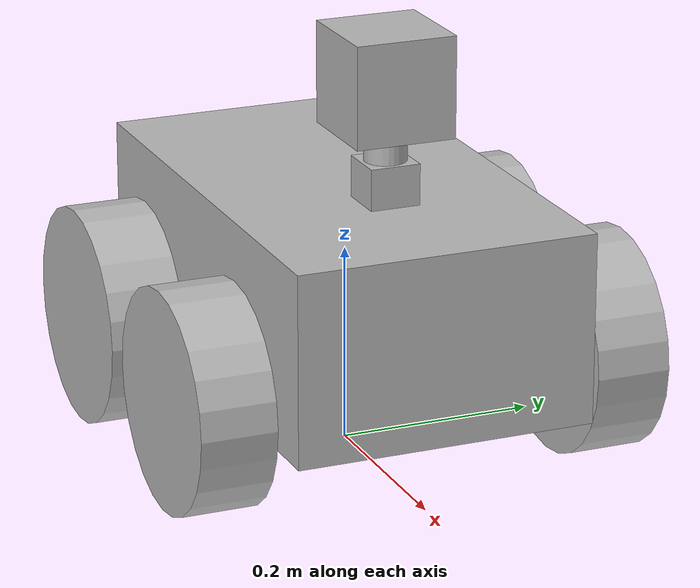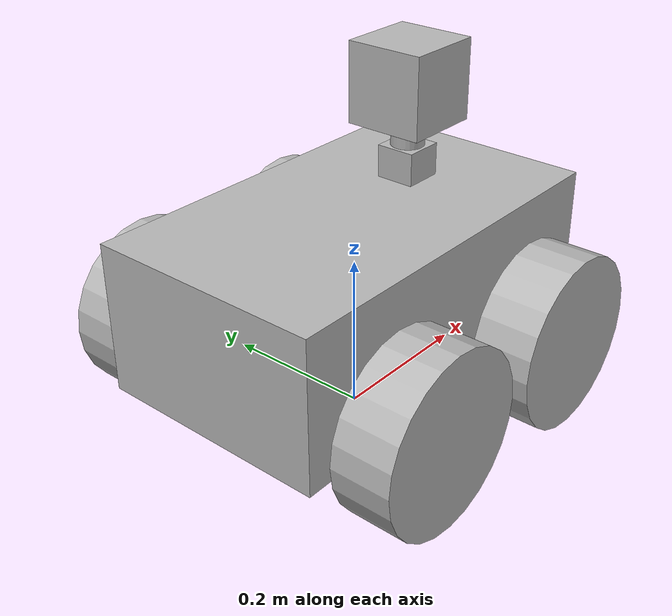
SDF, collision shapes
<?xml version="1.0" ?>
<sdf version="1.5">
  <model name="pioneer3at_ros">
    <pose>0 0 0.180 0 0 0</pose>
    <static>false</static>
    <link name="base_link">
      <inertial>
        <mass>14.0</mass>
        <inertia>
          <ixx>0.147116667</ixx>
          <ixy>0.0</ixy>
          <ixz>0.0</ixz>
          <iyy>0.334951167</iyy>
          <iyz>0.0</iyz>
          <izz>0.3978345</izz>
        </inertia>
      </inertial>
      <collision name="collision1">
        <geometry>
          <box>
            <size>0.501 0.300 0.19</size>
          </box>
        </geometry>
      </collision>
      <visual name="visual1">
        <geometry>
          <mesh>
            <uri>model://pioneer3at_ros/meshes/chassis.dae</uri>
          </mesh>
        </geometry>
      </visual>
    </link>
    <link name="right_front_wheel">
      <pose>0.125 -0.201 -0.06 1.5707 0 0</pose>

      <inertial>
        <mass>1.5</mass>
        <inertia>
          <ixx>0.005240625</ixx>
          <iyy>0.005240625</iyy>
          <izz>0.009075</izz>
          <ixy>0</ixy>
          <ixz>0</ixz>
          <iyz>0</iyz>
        </inertia>
      </inertial>

      <collision name="collision">
        <geometry>
          <cylinder>
            <radius>0.110</radius>
            <length>0.075</length>
          </cylinder>
        </geometry>
        <surface>
          <friction>
            <ode>
              <mu>1</mu>
              <mu2>1</mu2>
              <slip1>0</slip1>
              <slip2>0</slip2>
            </ode>
          </friction>
        </surface>
      </collision>
      <visual name="visual">
        <geometry>
          <mesh>
            <uri>model://pioneer3at_ros/meshes/wheel.dae</uri>
          </mesh>
        </geometry>
      </visual>
    </link>
    <link name="left_front_wheel">
      <pose>0.125 0.201 -0.06 1.5707 0 0</pose>

      <inertial>
        <mass>1.5</mass>
        <inertia>
          <ixx>0.005240625</ixx>
          <iyy>0.005240625</iyy>
          <izz>0.009075</izz>
          <ixy>0</ixy>
          <ixz>0</ixz>
          <iyz>0</iyz>
        </inertia>
      </inertial>

      <collision name="collision">
        <geometry>
          <cylinder>
            <radius>0.110</radius>
            <length>0.075</length>
          </cylinder>
        </geometry>
        <surface>
          <friction>
            <ode>
              <mu>1</mu>
              <mu2>1</mu2>
              <slip1>0</slip1>
              <slip2>0</slip2>
            </ode>
          </friction>
        </surface>
      </collision>
      <visual name="visual">
        <geometry>
          <mesh>
            <uri>model://pioneer3at_ros/meshes/wheel.dae</uri>
          </mesh>
        </geometry>
      </visual>
    </link>
    <link name="right_rear_wheel">
      <pose>-0.125 -0.201 -0.06 1.5707 0 0</pose>

      <inertial>
        <mass>1.5</mass>
        <inertia>
          <ixx>0.005240625</ixx>
          <iyy>0.005240625</iyy>
          <izz>0.009075</izz>
          <ixy>0</ixy>
          <ixz>0</ixz>
          <iyz>0</iyz>
        </inertia>
      </inertial>

      <collision name="collision">
        <geometry>
          <cylinder>
            <radius>0.110</radius>
            <length>0.075</length>
          </cylinder>
        </geometry>
        <surface>
          <friction>
            <ode>
              <mu>1</mu>
              <mu2>1</mu2>
              <slip1>0</slip1>
              <slip2>0</slip2>
            </ode>
          </friction>
        </surface>
      </collision>
      <visual name="visual">
        <geometry>
          <mesh>
            <uri>model://pioneer3at_ros/meshes/wheel.dae</uri>
          </mesh>
        </geometry>
      </visual>
    </link>
    <link name="left_rear_wheel">
      <pose>-0.125 0.201 -0.06 1.5707 0 0</pose>

      <inertial>
        <mass>1.5</mass>
        <inertia>
          <ixx>0.005240625</ixx>
          <iyy>0.005240625</iyy>
          <izz>0.009075</izz>
          <ixy>0</ixy>
          <ixz>0</ixz>
          <iyz>0</iyz>
        </inertia>
      </inertial>

      <collision name="collision">
        <geometry>
          <cylinder>
            <radius>0.110</radius>
            <length>0.075</length>
          </cylinder>
        </geometry>
        <surface>
          <friction>
            <ode>
              <mu>1</mu>
              <mu2>1</mu2>
              <slip1>0</slip1>
              <slip2>0</slip2>
            </ode>
          </friction>
        </surface>
      </collision>
      <visual name="visual">
        <geometry>
          <mesh>
            <uri>model://pioneer3at_ros/meshes/wheel.dae</uri>
          </mesh>
        </geometry>
      </visual>
    </link>
    <joint type="revolute" name="right_front">
      <pose>0 0 0 0 0 0</pose>
      <child>right_front_wheel</child>
      <parent>base_link</parent>
      <axis>
        <xyz>0 1 0</xyz>
        <use_parent_model_frame>true</use_parent_model_frame>
      </axis>
    </joint>
    <joint type="revolute" name="right_rear">
      <pose>0 0 0 0 0 0</pose>
      <child>right_rear_wheel</child>
      <parent>base_link</parent>
      <axis>
        <xyz>0 1 0</xyz>
        <use_parent_model_frame>true</use_parent_model_frame>
      </axis>
    </joint>
    <joint type="revolute" name="left_front">
      <pose>0 0 0 0 0 0</pose>
      <child>left_front_wheel</child>
      <parent>base_link</parent>
      <axis>
        <xyz>0 1 0</xyz>
        <use_parent_model_frame>true</use_parent_model_frame>
      </axis>
    </joint>
    <joint type="revolute" name="left_rear">
      <pose>0 0 0 0 0 0</pose>
      <child>left_rear_wheel</child>
      <parent>base_link</parent>
      <axis>
        <xyz>0 1 0</xyz>
        <use_parent_model_frame>true</use_parent_model_frame>
      </axis>
    </joint>

    <plugin name="skid_steer_drive_controller" filename="libgazebo_ros_skid_steer_drive.so">
      <robotNamespace>pioneer3at_ros</robotNamespace>
      <updateRate>100.0</updateRate>
      <leftFrontJoint>left_front</leftFrontJoint>
      <rightFrontJoint>right_front</rightFrontJoint>
      <leftRearJoint>left_rear</leftRearJoint>
      <rightRearJoint>right_rear</rightRearJoint>
      <wheelSeparation>0.4</wheelSeparation>
      <wheelDiameter>0.215</wheelDiameter>
      <robotBaseFrame>sos_rs1/base_link</robotBaseFrame>
      <torque>200</torque>
      <commandTopic>cmd_vel</commandTopic>
      <odometryTopic>odom</odometryTopic>
      <odometryFrame>sos_rs1/odom</odometryFrame>
      <broadcastTF>true</broadcastTF>
    </plugin>

<!-- Camera (hight is 100mm) -->
    <link name="camera_ros_link">
      <audio_sink/>
      <pose>0.1 0 0.22 0 0 0</pose>
      <inertial>
        <mass>0.1</mass>
        <inertia>
          <ixx>0.000166667</ixx>
          <iyy>0.000166667</iyy>
          <izz>0.000166667</izz>
        </inertia>
      </inertial>
      <collision name="collision">
        <geometry>
          <box>
            <size>0.1 0.1 0.1</size>
          </box>
        </geometry>
      </collision>
      <visual name="visual">
        <geometry>
          <box>
            <size>0.1 0.1 0.1</size>
          </box>
        </geometry>
      </visual>
<!-- THERMAL CAMERA -->
      <sensor type="camera" name="thermal_camera_sensor">
        <update_rate>10</update_rate>
        <camera name="camera_ros_thermal">
          <horizontal_fov>1.047</horizontal_fov>
          <image>
            <width>160</width>
            <height>120</height>
            <format>R8G8B8</format>
          </image>
          <clip>
            <near>0.01</near>
            <far>100</far>
          </clip>
        </camera>
        <plugin name="thermal_camera_controller" filename="libgazebo_ros_thermal_camera_pink.so">
          <robotNamespace>pioneer3at_ros</robotNamespace>
          <alwaysOn>true</alwaysOn>
          <updateRate>10</updateRate>
          <imageTopicName>thermal_camera/image_raw</imageTopicName>
          <cameraInfoTopicName>thermal_camera/camera_info</cameraInfoTopicName>
          <frameName>thermal_optical_frame</frameName>
          <interface:camera name="thermal_camera_iface" />
        </plugin>
      </sensor> -->
<!-- CAMERA -->
      <sensor type="camera" name="camera_ros">
        <update_rate>20</update_rate>
        <camera name="camera_ros">
          <horizontal_fov>1.047</horizontal_fov>
          <image>
            <width>320</width>
            <height>240</height>
            <format>R8G8B8</format>
          </image>
          <clip>
            <near>0.1</near>
            <far>100</far>
          </clip>
     <!-- Noise is sampled independently per pixel on each frame.
          That pixel's noise value is added to each of its color
          channels, which at that point lie in the range [0,1]. -->
          <noise>
            <type>gaussian</type>
            <mean>0.0</mean>
            <stddev>0.007</stddev>
          </noise>
        </camera>
        <plugin name="camera_controller" filename="libgazebo_ros_camera.so">
          <robotNamespace>pioneer3at_ros</robotNamespace>
          <alwaysOn>true</alwaysOn>
          <updateRate>0.0</updateRate>
          <cameraName>camera_ros</cameraName>
          <imageTopicName>image</imageTopicName>
          <cameraInfoTopicName>camera_ros_info</cameraInfoTopicName>
          <frameName>camera_ros_link</frameName>
          <hackBaseline>0.07</hackBaseline>
          <distortionK1>0.0</distortionK1>
          <distortionK2>0.0</distortionK2>
          <distortionK3>0.0</distortionK3>
          <distortionT1>0.0</distortionT1>
          <distortionT2>0.0</distortionT2>
        </plugin>
      </sensor>
    </link>
    <joint name="camera_joint" type="revolute">
      <parent>base_link</parent>
      <child>camera_ros_link</child>
      <pose>0 0 0 0 0 0</pose>
      <axis>
        <xyz>0.000000 0.000000 1.000000</xyz>
        <limit>
          <lower>0</lower>
          <upper>0</upper>
        </limit>
      </axis>
    </joint>

<!-- Hokuyo (hight is 70mm) -->
    <link name="hokuyo_ros_link">
      <pose>0.1 0 0.135 0 0 0</pose>
      <inertial>
        <mass>0.1</mass>
      </inertial>
      <visual name="visual">
        <geometry>
          <mesh>
            <uri>model://hokuyo_ros/meshes/hokuyo.dae</uri>
          </mesh>
        </geometry>
      </visual>
      <collision name="collision-base">
        <pose>0 0 -0.0145 0 0 0</pose>
        <geometry>
          <box>
            <size>0.05 0.05 0.041</size>
          </box>
        </geometry>
      </collision>
      <collision name="collision-top">
        <pose>0 0 0.0205 0 0 0</pose>
        <geometry>
          <cylinder>
            <radius>0.021</radius>
            <length>0.029</length>
          </cylinder>
        </geometry>
      </collision>
      <sensor type="ray" name="lms200">
        <always_on>true</always_on>
        <update_rate>30</update_rate>
        <pose>0 0 0 0 0 0</pose>
        <visualize>false</visualize>
        <ray>
          <scan>
            <horizontal>
            <samples>181</samples>
            <resolution>1</resolution>
            <min_angle>-1.570796</min_angle>
            <max_angle>1.570796</max_angle>
            </horizontal>
          </scan>
          <range>
            <min>0.08</min>
            <max>30.0</max>
            <resolution>0.01</resolution>
          </range>
        </ray>
        <plugin name="gazebo_ros_hokuyo_controller" filename="libgazebo_ros_laser.so">
          <robotNamespace>pioneer3at_ros</robotNamespace>
          <gaussianNoise>0.005</gaussianNoise>
          <alwaysOn>true</alwaysOn>
          <updateRate>30</updateRate>
          <topicName>scan</topicName>
          <frameName>hokuyo_frame</frameName>
        </plugin>
      </sensor>
    </link>
    <joint name="hokuyo_joint" type="revolute">
      <parent>base_link</parent>
      <child>hokuyo_ros_link</child>
      <pose>0 0 0 0 0 0</pose>
      <axis>
        <xyz>0.000000 0.000000 1.000000</xyz>
        <limit>
          <lower>0</lower>
          <upper>0</upper>
        </limit>
      </axis>
    </joint>

  </model>
</sdf>
